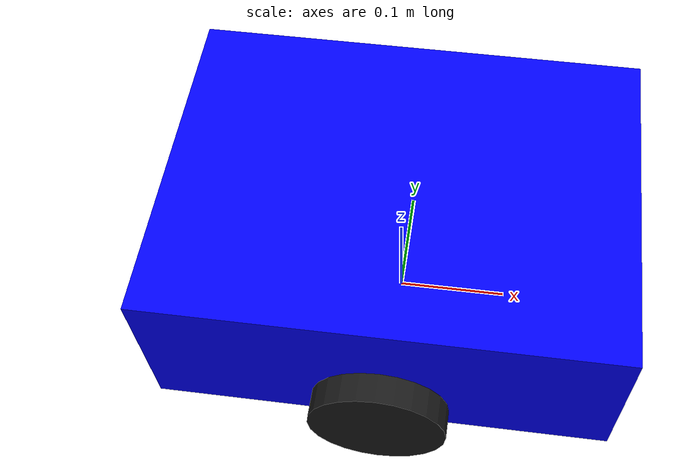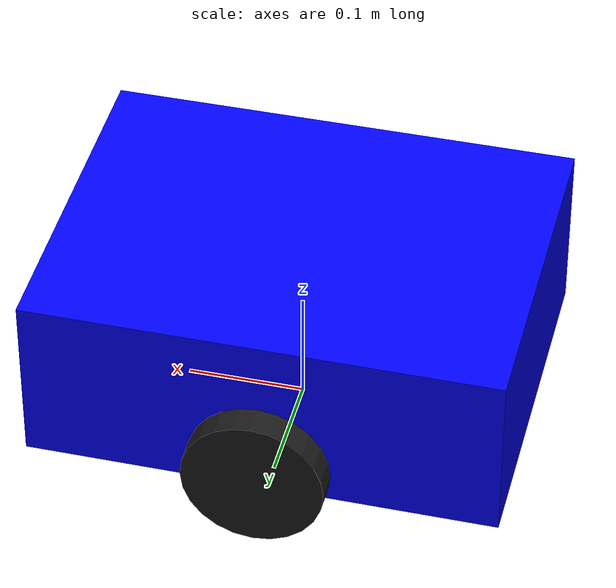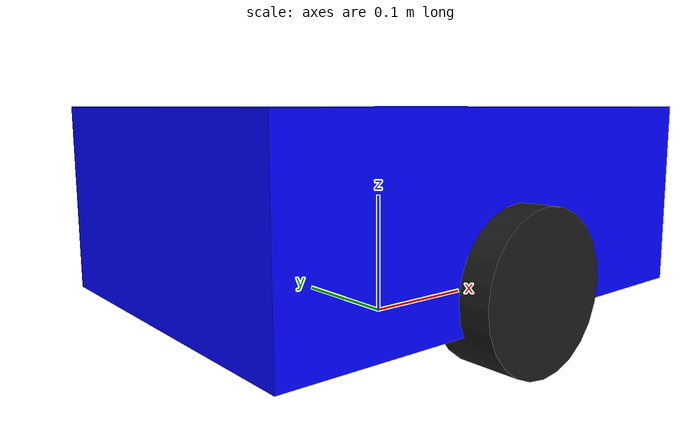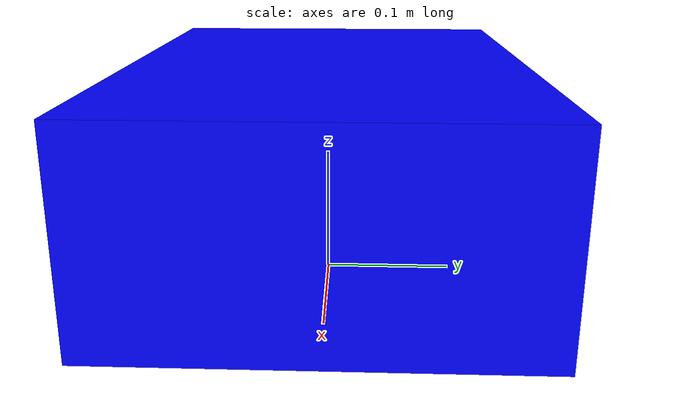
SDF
<?xml version="1.0" ?>
<sdf version="1.9">
  <model name="platoon_bot">
    <static>false</static>

    <link name="base_link">
      <pose>0 0 0.1 0 0 0</pose>

      <collision name="collision">
        <geometry>
          <box>
            <size>0.4 0.3 0.15</size>
          </box>
        </geometry>
      </collision>

      <visual name="visual">
        <geometry>
          <box>
            <size>0.4 0.3 0.15</size>
          </box>
        </geometry>
        <material>
          <ambient>0.0 0.0 1.0 1</ambient>
          <diffuse>0.0 0.0 1.0 1</diffuse>
          <specular>0.1 0.1 0.1 1</specular>
        </material>
      </visual>

      <inertial>
        <mass>5.0</mass>
        <inertia>
          <ixx>0.04</ixx>
          <ixy>0</ixy>
          <ixz>0</ixz>
          <iyy>0.07</iyy>
          <iyz>0</iyz>
          <izz>0.09</izz>
        </inertia>
      </inertial>
    </link>

    <link name="left_wheel">
      <pose>0 0.15 0.05 -1.5707 0 0</pose>
      <collision name="collision">
        <geometry>
          <cylinder>
            <radius>0.06</radius>
            <length>0.05</length>
          </cylinder>
        </geometry>
      </collision>
      <visual name="visual">
        <geometry>
          <cylinder>
            <radius>0.06</radius>
            <length>0.05</length>
          </cylinder>
        </geometry>
        <material>
          <ambient>0.1 0.1 0.1 1</ambient>
          <diffuse>0.1 0.1 0.1 1</diffuse>
        </material>
      </visual>
      <inertial>
        <mass>0.5</mass>
        <inertia>
          <ixx>0.001</ixx>
          <ixy>0</ixy>
          <ixz>0</ixz>
          <iyy>0.001</iyy>
          <iyz>0</iyz>
          <izz>0.001</izz>
        </inertia>
      </inertial>
    </link>

    <link name="right_wheel">
      <pose>0 -0.15 0.05 -1.5707 0 0</pose>
      <collision name="collision">
        <geometry>
          <cylinder>
            <radius>0.06</radius>
            <length>0.05</length>
          </cylinder>
        </geometry>
      </collision>
      <visual name="visual">
        <geometry>
          <cylinder>
            <radius>0.06</radius>
            <length>0.05</length>
          </cylinder>
        </geometry>
        <material>
          <ambient>0.1 0.1 0.1 1</ambient>
          <diffuse>0.1 0.1 0.1 1</diffuse>
        </material>
      </visual>
      <inertial>
        <mass>0.5</mass>
        <inertia>
          <ixx>0.001</ixx>
          <ixy>0</ixy>
          <ixz>0</ixz>
          <iyy>0.001</iyy>
          <iyz>0</iyz>
          <izz>0.001</izz>
        </inertia>
      </inertial>
    </link>

    <joint name="left_wheel_joint" type="revolute">
      <parent>base_link</parent>
      <child>left_wheel</child>
      <axis>
        <xyz>0 0 1</xyz>
      </axis>
    </joint>

    <joint name="right_wheel_joint" type="revolute">
      <parent>base_link</parent>
      <child>right_wheel</child>
      <axis>
        <xyz>0 0 1</xyz>
      </axis>
    </joint>

    <plugin
      filename="gz-sim-diff-drive-system"
      name="gz::sim::systems::DiffDrive">
      <left_joint>left_wheel_joint</left_joint>
      <right_joint>right_wheel_joint</right_joint>
      <wheel_separation>0.30</wheel_separation>
      <wheel_radius>0.06</wheel_radius>
      <topic>cmd_vel</topic>
      <odom_topic>odometry</odom_topic>
      <tf_topic>tf</tf_topic>
      <frame_id>odom</frame_id>
      <child_frame_id>base_link</child_frame_id>
    </plugin>
  </model>
</sdf>
